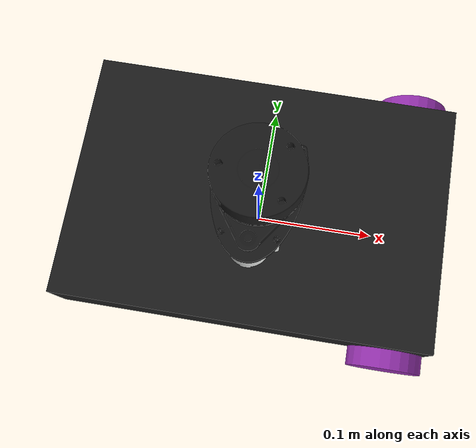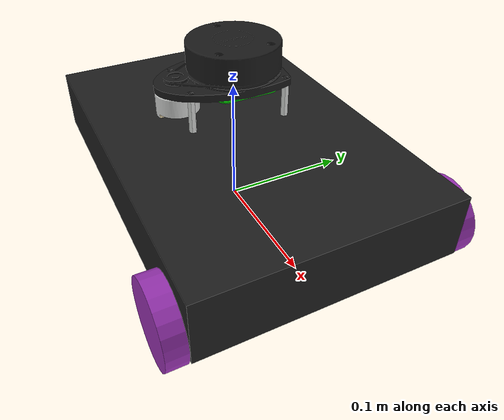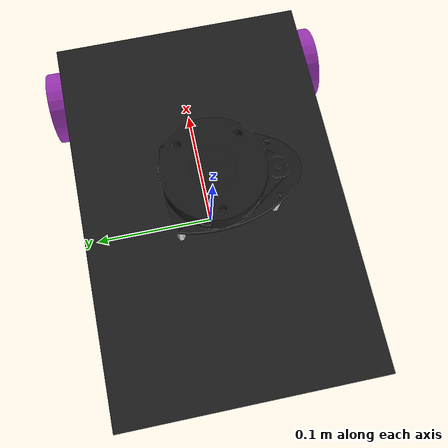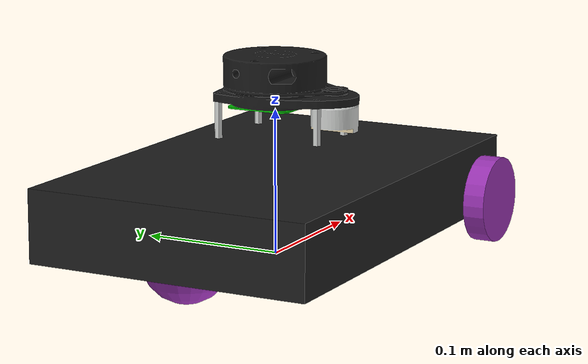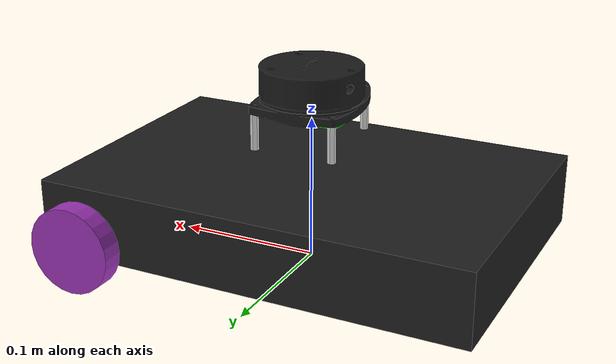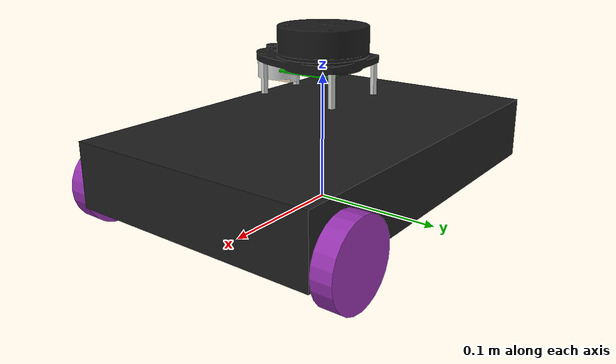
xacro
<?xml version="1.0"?>
<robot xmlns:xacro="http://www.ros.org/wiki/xacro" name="caster_robot">

<xacro:include filename="material.xacro"/>
<xacro:include filename="inertial_calc.xacro"/>
<xacro:include filename="differential_drive_gazebo_plugin.urdf.xacro"/>
<xacro:include filename="laser.urdf.xacro"/>

<xacro:property name="radius" value="0.03"/>

<link name="base_footprint"/>   <!-- Dummy link for the robot's base -->

<link name="base_link">
    <visual name="base_visual">
        <origin xyz="0.0 0.0 0.0" rpy="0.0 0.0 0.0"/>
        <geometry>
            <box size="0.3 0.2 0.05"/>
        </geometry>
        <material name="black"/>
    </visual>

    <collision>
        <origin xyz="0.0 0.0 0.0" rpy="0.0 0.0 0.0"/>
        <geometry>
            <box size="0.3 0.2 0.05"/>
        </geometry>
    </collision>

    <xacro:box_inertial mass="1.0" x="0.3" y="0.2" z="0.05">
        <origin xyz="0 0 0" rpy="0 0 0"/>
    </xacro:box_inertial>
</link>

<joint name="base_joint" type="fixed">
    <origin xyz="0.0 0.0 0.040" rpy="0.0 0.0 0.0"/>
    <parent link="base_footprint"/>
    <child link="base_link"/>
    <axis xyz="0.0 0.0 0.0"/>
</joint>

<!-- Right Wheel link& joint-->
<link name="rear_right_wheel">
    <visual name="right_wheel_visual">
        <origin xyz="0.0 0.0 0.0" rpy="0.0 0.0 0.0"/>
        <geometry>
            <cylinder radius="${radius}" length="0.015"/>
        </geometry>
        <material name="purple"/>
    </visual>

    <collision>
        <origin xyz="0.0 0.0 0.0" rpy="0.0 0.0 0.0"/>
        <geometry>
            <cylinder radius="${radius}" length="0.015"/>
        </geometry>
    </collision>

    <xacro:cylinder_inertial mass="0.5" radius="${radius}" length="0.015">
        <origin xyz="0 0 0" rpy="0 0 0"/>
    </xacro:cylinder_inertial>
</link>
<joint name="base_to_right_wheel" type="continuous">
    <origin xyz="0.12 0.1077 -0.015" rpy="${pi/2} 0 0"/>
    <parent link="base_link"/>
    <child link="rear_right_wheel"/>
    <axis xyz="0.0 0.0 1.0"/>
</joint>

<!-- Left Wheel link& joint-->
<link name="rear_left_wheel">
    <visual name="left_wheel_visual">
        <origin xyz="0.0 0.0 0.0" rpy="0.0 0.0 0.0"/>
        <geometry>
            <cylinder radius="${radius}" length="0.015"/>
        </geometry>
        <material name="purple"/>
    </visual>

    <collision>
        <origin xyz="0.0 0.0 0.0" rpy="0.0 0.0 0.0"/>
        <geometry>
            <cylinder radius="${radius}" length="0.015"/>
        </geometry>
    </collision>

    <xacro:cylinder_inertial mass="0.5" radius="${radius}" length="0.015">
        <origin xyz="0 0 0" rpy="0 0 0"/>
    </xacro:cylinder_inertial>
</link>
<joint name="base_to_left_wheel" type="continuous">
    <origin xyz="0.12 -0.1077 -0.015" rpy="${pi/2} 0 0"/>
    <parent link="base_link"/>
    <child link="rear_left_wheel"/>
    <axis xyz="0.0 0.0 1.0"/>
</joint>

<!-- Front Middle Caster Wheel link& joint-->
<link name="caster_wheel">
    <visual name="caster_wheel_visual">
        <origin xyz="0.0 0.0 0.0" rpy="0.0 0.0 0.0"/>
        <geometry>
            <sphere radius="${radius}"/>
        </geometry>
        <material name="purple"/>
    </visual>

    <collision>
        <origin xyz="0.0 0.0 0.0" rpy="0.0 0.0 0.0"/>
        <geometry>
            <sphere radius="${radius}"/>
        </geometry>
    </collision>

    <xacro:sphere_inertial mass="0.5" radius="${radius}">
        <origin xyz="0 0 0" rpy="0 0 0"/>
    </xacro:sphere_inertial>
</link>
<joint name="base_to_caster_wheel" type="continuous">
    <origin xyz="-0.12 0.0 -0.015" rpy="0 0 0"/>
    <parent link="base_link"/>
    <child link="caster_wheel"/>
    <axis xyz="0.0 1.0 0.0"/>
</joint>

</robot>

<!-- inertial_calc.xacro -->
<robot xmlns:xacro="http://www.ros.org/wiki/xacro" >

<xacro:macro name="box_inertial" params="mass x y z *origin">
    <inertial>
    <xacro:insert_block name="origin"/>
    <mass value="${mass}" />
    <inertia
        ixx="${mass * (y*y + z*z) / 12}"
        ixy="0"
        ixz="0"
        iyy="${mass * (x*x + z*z) / 12}"
        iyz="0"
        izz="${mass * (x*x + y*y) / 12}" />
    </inertial>
</xacro:macro>

<xacro:macro name="cylinder_inertial" params="mass radius length *origin">
    <inertial>
    <xacro:insert_block name="origin"/>
    <mass value="${mass}" />
    <inertia
        ixx="${mass * (3 * radius * radius + length * length) / 12}"
        ixy="0"
        ixz="0"
        iyy="${mass * (3 * radius * radius + length * length) / 12}"
        iyz="0"
        izz="${mass * radius * radius / 2}" />
    </inertial>
</xacro:macro>

<xacro:macro name="sphere_inertial" params="mass radius *origin">
    <inertial>
    <xacro:insert_block name="origin"/>
    <mass value="${mass}" />
    <inertia
        ixx="${2 * mass * radius * radius / 5}"
        ixy="0"
        ixz="0"
        iyy="${2 * mass * radius * radius / 5}"
        iyz="0"
        izz="${2 * mass * radius * radius / 5}" />
    </inertial>
</xacro:macro>

</robot>

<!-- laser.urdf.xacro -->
<robot name="rplidar" xmlns:xacro="http://www.ros.org/wiki/xacro">

  <joint name="laser_joint" type="fixed">
    <axis xyz="0 1 0" />
    <origin xyz="0 0 0.0635" rpy="0 0 0"/>
    <parent link="base_link"/>
    <child link="lidar_link"/>
  </joint>

  <!-- Hokuyo Laser -->
  <link name="lidar_link">
    <collision>
      <origin xyz="0 0 0" rpy="0 0 0"/>
      <geometry>
        <mesh filename="package://robot_description/meshes/rplidar.dae" scale="1 1 1"/>
      </geometry>
    </collision>

    <visual>
      <origin xyz="0 0 0" rpy="0 0 0"/>
      <geometry>
        <mesh filename="package://robot_description/meshes/rplidar.dae" scale="1 1 1"/>
      </geometry>
    </visual>

    <inertial>
      <mass value="1e-5" />
      <origin xyz="0 0 0" rpy="0 0 0"/>
      <inertia ixx="1e-6" ixy="0" ixz="0" iyy="1e-6" iyz="0" izz="1e-6" />
    </inertial>
  </link>

  <!-- GPU laser Plugin -->
  <gazebo reference="hokuyo_link">
    <sensor type="gpu_ray" name="rplidar_sensor">
      <pose>0 0 0 0 0 0</pose>
      <visualize>true</visualize>
      <update_rate>30</update_rate>
      <ray>
        <scan>
          <horizontal>
            <samples>720</samples>
            <resolution>1</resolution>
            <min_angle>-1.570796</min_angle>
            <max_angle>1.570796</max_angle>
          </horizontal>
        </scan>
        <range>
          <min>0.10</min>
          <max>30.0</max>
          <resolution>0.01</resolution>
        </range>
        <noise>
          <type>gaussian</type>
          <mean>0.0</mean>
          <stddev>0.01</stddev>
        </noise>
      </ray>
      <plugin name="gazebo_ros_head_hokuyo_controller" filename="libgazebo_ros_gpu_laser.so">
        <topicName>/rrbot/laser/scan</topicName>
        <frameName>hokuyo_link</frameName>
      </plugin>
    </sensor>
  </gazebo>

</robot>
